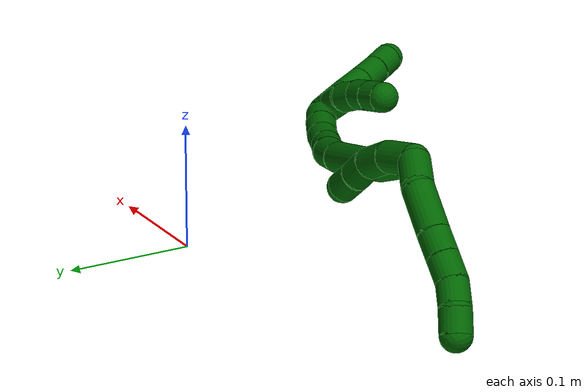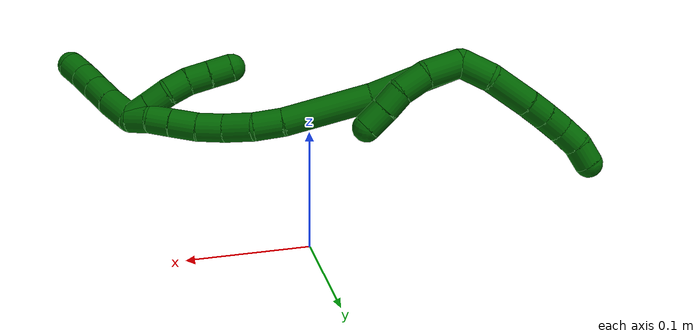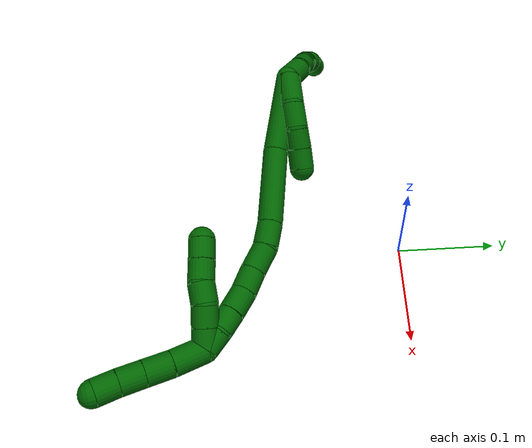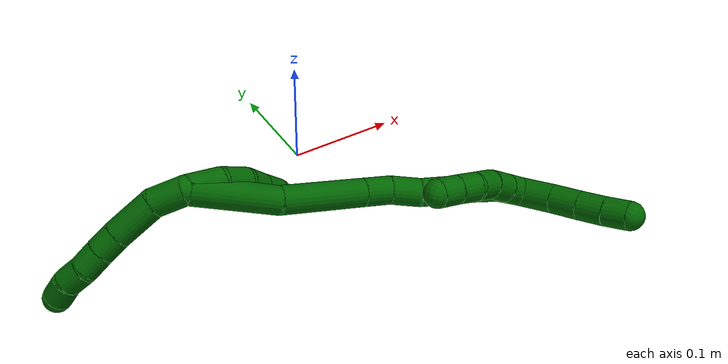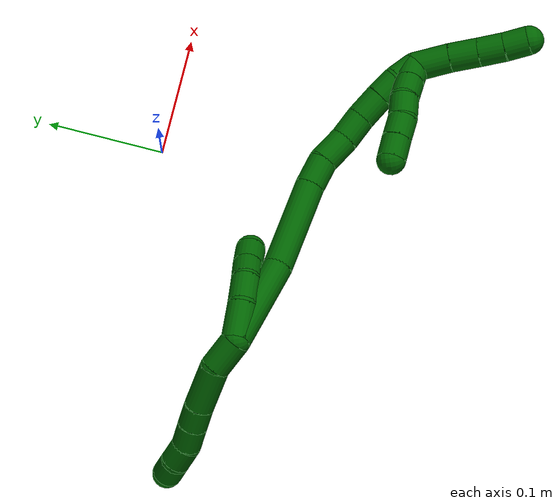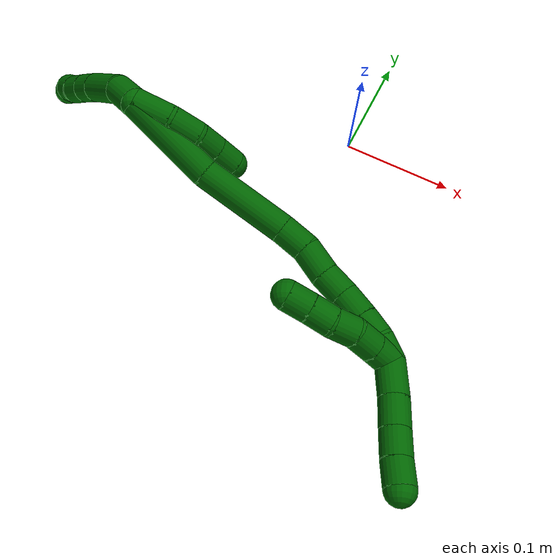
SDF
<sdf version="1.7">
 <world name="default">
  <model name="6">
   <static>0</static>
   <link name="6">
    <collision name="collision-cylinder-e_1_2_8">
     <pose>-0.009412 -0.004032 -0.010363 2.77052 -0.70242 -2.19477</pose>
     <geometry><cylinder><radius>0.0125</radius><length>0.029138</length></cylinder></geometry>
     <surface>
      <friction><ode><mu>1.16</mu><mu2>1.16</mu2><slip1>0</slip1><slip2>0</slip2></ode></friction>
      <contact><ode><kp>1e+06</kp><kd>1</kd><max_vel>0</max_vel><min_depth>0.001</min_depth></ode></contact>
     </surface>
    </collision>
    <visual name="visual-cylinder-e_1_2_8">
     <pose>-0.009412 -0.004032 -0.010363 2.77052 -0.70242 -2.19477</pose>
     <geometry><cylinder><radius>0.0125</radius><length>0.029138</length></cylinder></geometry>
     <material><ambient>0 0.392157 0.003922 1</ambient></material>
    </visual>
    <collision name="collision-cylinder-e_2_8_9">
     <pose>-0.032936 -0.018177 -0.03035 2.33143 -0.79081 -1.54384</pose>
     <geometry><cylinder><radius>0.0125</radius><length>0.039699</length></cylinder></geometry>
     <surface>
      <friction><ode><mu>1.16</mu><mu2>1.16</mu2><slip1>0</slip1><slip2>0</slip2></ode></friction>
      <contact><ode><kp>1e+06</kp><kd>1</kd><max_vel>0</max_vel><min_depth>0.001</min_depth></ode></contact>
     </surface>
    </collision>
    <visual name="visual-cylinder-e_2_8_9">
     <pose>-0.032936 -0.018177 -0.03035 2.33143 -0.79081 -1.54384</pose>
     <geometry><cylinder><radius>0.0125</radius><length>0.039699</length></cylinder></geometry>
     <material><ambient>0 0.392157 0.003922 1</ambient></material>
    </visual>
    <collision name="collision-cylinder-e_3_9_10">
     <pose>-0.054178 -0.033833 -0.044301 2.23357 -0.792226 -1.41707</pose>
     <geometry><cylinder><radius>0.0125</radius><length>0.020031</length></cylinder></geometry>
     <surface>
      <friction><ode><mu>1.16</mu><mu2>1.16</mu2><slip1>0</slip1><slip2>0</slip2></ode></friction>
      <contact><ode><kp>1e+06</kp><kd>1</kd><max_vel>0</max_vel><min_depth>0.001</min_depth></ode></contact>
     </surface>
    </collision>
    <visual name="visual-cylinder-e_3_9_10">
     <pose>-0.054178 -0.033833 -0.044301 2.23357 -0.792226 -1.41707</pose>
     <geometry><cylinder><radius>0.0125</radius><length>0.020031</length></cylinder></geometry>
     <material><ambient>0 0.392157 0.003922 1</ambient></material>
    </visual>
    <collision name="collision-cylinder-e_4_10_11">
     <pose>-0.068554 -0.045403 -0.052943 2.19223 -0.774199 -1.34132</pose>
     <geometry><cylinder><radius>0.0125</radius><length>0.020729</length></cylinder></geometry>
     <surface>
      <friction><ode><mu>1.16</mu><mu2>1.16</mu2><slip1>0</slip1><slip2>0</slip2></ode></friction>
      <contact><ode><kp>1e+06</kp><kd>1</kd><max_vel>0</max_vel><min_depth>0.001</min_depth></ode></contact>
     </surface>
    </collision>
    <visual name="visual-cylinder-e_4_10_11">
     <pose>-0.068554 -0.045403 -0.052943 2.19223 -0.774199 -1.34132</pose>
     <geometry><cylinder><radius>0.0125</radius><length>0.020729</length></cylinder></geometry>
     <material><ambient>0 0.392157 0.003922 1</ambient></material>
    </visual>
    <collision name="collision-cylinder-e_5_11_12">
     <pose>-0.08153 -0.057185 -0.063424 2.39048 -0.596541 -1.32458</pose>
     <geometry><cylinder><radius>0.0125</radius><length>0.020395</length></cylinder></geometry>
     <surface>
      <friction><ode><mu>1.16</mu><mu2>1.16</mu2><slip1>0</slip1><slip2>0</slip2></ode></friction>
      <contact><ode><kp>1e+06</kp><kd>1</kd><max_vel>0</max_vel><min_depth>0.001</min_depth></ode></contact>
     </surface>
    </collision>
    <visual name="visual-cylinder-e_5_11_12">
     <pose>-0.08153 -0.057185 -0.063424 2.39048 -0.596541 -1.32458</pose>
     <geometry><cylinder><radius>0.0125</radius><length>0.020395</length></cylinder></geometry>
     <material><ambient>0 0.392157 0.003922 1</ambient></material>
    </visual>
    <collision name="collision-cylinder-e_6_12_6">
     <pose>-0.091211 -0.070649 -0.074597 2.14703 -0.406227 -0.725318</pose>
     <geometry><cylinder><radius>0.0125</radius><length>0.020009</length></cylinder></geometry>
     <surface>
      <friction><ode><mu>1.16</mu><mu2>1.16</mu2><slip1>0</slip1><slip2>0</slip2></ode></friction>
      <contact><ode><kp>1e+06</kp><kd>1</kd><max_vel>0</max_vel><min_depth>0.001</min_depth></ode></contact>
     </surface>
    </collision>
    <visual name="visual-cylinder-e_6_12_6">
     <pose>-0.091211 -0.070649 -0.074597 2.14703 -0.406227 -0.725318</pose>
     <geometry><cylinder><radius>0.0125</radius><length>0.020009</length></cylinder></geometry>
     <material><ambient>0 0.392157 0.003922 1</ambient></material>
    </visual>
    <collision name="collision-cylinder-e_1_2_13">
     <pose>0.014981 -0.004576 0.003926 0.861785 1.18815 0.602154</pose>
     <geometry><cylinder><radius>0.0125</radius><length>0.032297</length></cylinder></geometry>
     <surface>
      <friction><ode><mu>1.16</mu><mu2>1.16</mu2><slip1>0</slip1><slip2>0</slip2></ode></friction>
      <contact><ode><kp>1e+06</kp><kd>1</kd><max_vel>0</max_vel><min_depth>0.001</min_depth></ode></contact>
     </surface>
    </collision>
    <visual name="visual-cylinder-e_1_2_13">
     <pose>0.014981 -0.004576 0.003926 0.861785 1.18815 0.602154</pose>
     <geometry><cylinder><radius>0.0125</radius><length>0.032297</length></cylinder></geometry>
     <material><ambient>0 0.392157 0.003922 1</ambient></material>
    </visual>
    <collision name="collision-cylinder-e_2_13_14">
     <pose>0.040778 -0.015988 0.009772 1.29682 0.989937 0.776473</pose>
     <geometry><cylinder><radius>0.0125</radius><length>0.025877</length></cylinder></geometry>
     <surface>
      <friction><ode><mu>1.16</mu><mu2>1.16</mu2><slip1>0</slip1><slip2>0</slip2></ode></friction>
      <contact><ode><kp>1e+06</kp><kd>1</kd><max_vel>0</max_vel><min_depth>0.001</min_depth></ode></contact>
     </surface>
    </collision>
    <visual name="visual-cylinder-e_2_13_14">
     <pose>0.040778 -0.015988 0.009772 1.29682 0.989937 0.776473</pose>
     <geometry><cylinder><radius>0.0125</radius><length>0.025877</length></cylinder></geometry>
     <material><ambient>0 0.392157 0.003922 1</ambient></material>
    </visual>
    <collision name="collision-cylinder-e_3_14_15">
     <pose>0.058517 -0.03041 0.012183 1.50634 0.738569 0.696179</pose>
     <geometry><cylinder><radius>0.0125</radius><length>0.020564</length></cylinder></geometry>
     <surface>
      <friction><ode><mu>1.16</mu><mu2>1.16</mu2><slip1>0</slip1><slip2>0</slip2></ode></friction>
      <contact><ode><kp>1e+06</kp><kd>1</kd><max_vel>0</max_vel><min_depth>0.001</min_depth></ode></contact>
     </surface>
    </collision>
    <visual name="visual-cylinder-e_3_14_15">
     <pose>0.058517 -0.03041 0.012183 1.50634 0.738569 0.696179</pose>
     <geometry><cylinder><radius>0.0125</radius><length>0.020564</length></cylinder></geometry>
     <material><ambient>0 0.392157 0.003922 1</ambient></material>
    </visual>
    <collision name="collision-cylinder-e_4_15_5">
     <pose>0.072849 -0.045535 0.013805 1.42176 0.771276 0.672566</pose>
     <geometry><cylinder><radius>0.0125</radius><length>0.021262</length></cylinder></geometry>
     <surface>
      <friction><ode><mu>1.16</mu><mu2>1.16</mu2><slip1>0</slip1><slip2>0</slip2></ode></friction>
      <contact><ode><kp>1e+06</kp><kd>1</kd><max_vel>0</max_vel><min_depth>0.001</min_depth></ode></contact>
     </surface>
    </collision>
    <visual name="visual-cylinder-e_4_15_5">
     <pose>0.072849 -0.045535 0.013805 1.42176 0.771276 0.672566</pose>
     <geometry><cylinder><radius>0.0125</radius><length>0.021262</length></cylinder></geometry>
     <material><ambient>0 0.392157 0.003922 1</ambient></material>
    </visual>
    <collision name="collision-cylinder-e_1_2_16">
     <pose>0.030345 -0.019308 0.018613 0.803713 0.847002 0.378559</pose>
     <geometry><cylinder><radius>0.0125</radius><length>0.080996</length></cylinder></geometry>
     <surface>
      <friction><ode><mu>1.16</mu><mu2>1.16</mu2><slip1>0</slip1><slip2>0</slip2></ode></friction>
      <contact><ode><kp>1e+06</kp><kd>1</kd><max_vel>0</max_vel><min_depth>0.001</min_depth></ode></contact>
     </surface>
    </collision>
    <visual name="visual-cylinder-e_1_2_16">
     <pose>0.030345 -0.019308 0.018613 0.803713 0.847002 0.378559</pose>
     <geometry><cylinder><radius>0.0125</radius><length>0.080996</length></cylinder></geometry>
     <material><ambient>0 0.392157 0.003922 1</ambient></material>
    </visual>
    <collision name="collision-cylinder-e_2_16_17">
     <pose>0.094418 -0.051661 0.053258 0.683058 1.02102 0.392996</pose>
     <geometry><cylinder><radius>0.0125</radius><length>0.079113</length></cylinder></geometry>
     <surface>
      <friction><ode><mu>1.16</mu><mu2>1.16</mu2><slip1>0</slip1><slip2>0</slip2></ode></friction>
      <contact><ode><kp>1e+06</kp><kd>1</kd><max_vel>0</max_vel><min_depth>0.001</min_depth></ode></contact>
     </surface>
    </collision>
    <visual name="visual-cylinder-e_2_16_17">
     <pose>0.094418 -0.051661 0.053258 0.683058 1.02102 0.392996</pose>
     <geometry><cylinder><radius>0.0125</radius><length>0.079113</length></cylinder></geometry>
     <material><ambient>0 0.392157 0.003922 1</ambient></material>
    </visual>
    <collision name="collision-cylinder-e_3_17_18">
     <pose>0.138563 -0.068012 0.075828 0.468102 0.95784 0.246341</pose>
     <geometry><cylinder><radius>0.0125</radius><length>0.025472</length></cylinder></geometry>
     <surface>
      <friction><ode><mu>1.16</mu><mu2>1.16</mu2><slip1>0</slip1><slip2>0</slip2></ode></friction>
      <contact><ode><kp>1e+06</kp><kd>1</kd><max_vel>0</max_vel><min_depth>0.001</min_depth></ode></contact>
     </surface>
    </collision>
    <visual name="visual-cylinder-e_3_17_18">
     <pose>0.138563 -0.068012 0.075828 0.468102 0.95784 0.246341</pose>
     <geometry><cylinder><radius>0.0125</radius><length>0.025472</length></cylinder></geometry>
     <material><ambient>0 0.392157 0.003922 1</ambient></material>
    </visual>
    <collision name="collision-cylinder-e_4_18_19">
     <pose>0.157504 -0.074909 0.091974 0.3577 0.69342 0.130449</pose>
     <geometry><cylinder><radius>0.0125</radius><length>0.026672</length></cylinder></geometry>
     <surface>
      <friction><ode><mu>1.16</mu><mu2>1.16</mu2><slip1>0</slip1><slip2>0</slip2></ode></friction>
      <contact><ode><kp>1e+06</kp><kd>1</kd><max_vel>0</max_vel><min_depth>0.001</min_depth></ode></contact>
     </surface>
    </collision>
    <visual name="visual-cylinder-e_4_18_19">
     <pose>0.157504 -0.074909 0.091974 0.3577 0.69342 0.130449</pose>
     <geometry><cylinder><radius>0.0125</radius><length>0.026672</length></cylinder></geometry>
     <material><ambient>0 0.392157 0.003922 1</ambient></material>
    </visual>
    <collision name="collision-cylinder-e_5_19_20">
     <pose>0.174611 -0.080178 0.109532 0.208038 0.812691 0.089781</pose>
     <geometry><cylinder><radius>0.0125</radius><length>0.023641</length></cylinder></geometry>
     <surface>
      <friction><ode><mu>1.16</mu><mu2>1.16</mu2><slip1>0</slip1><slip2>0</slip2></ode></friction>
      <contact><ode><kp>1e+06</kp><kd>1</kd><max_vel>0</max_vel><min_depth>0.001</min_depth></ode></contact>
     </surface>
    </collision>
    <visual name="visual-cylinder-e_5_19_20">
     <pose>0.174611 -0.080178 0.109532 0.208038 0.812691 0.089781</pose>
     <geometry><cylinder><radius>0.0125</radius><length>0.023641</length></cylinder></geometry>
     <material><ambient>0 0.392157 0.003922 1</ambient></material>
    </visual>
    <collision name="collision-cylinder-e_6_20_21">
     <pose>0.19107 -0.08251 0.12645 0.07271 0.719448 0.027356</pose>
     <geometry><cylinder><radius>0.0125</radius><length>0.023902</length></cylinder></geometry>
     <surface>
      <friction><ode><mu>1.16</mu><mu2>1.16</mu2><slip1>0</slip1><slip2>0</slip2></ode></friction>
      <contact><ode><kp>1e+06</kp><kd>1</kd><max_vel>0</max_vel><min_depth>0.001</min_depth></ode></contact>
     </surface>
    </collision>
    <visual name="visual-cylinder-e_6_20_21">
     <pose>0.19107 -0.08251 0.12645 0.07271 0.719448 0.027356</pose>
     <geometry><cylinder><radius>0.0125</radius><length>0.023902</length></cylinder></geometry>
     <material><ambient>0 0.392157 0.003922 1</ambient></material>
    </visual>
    <collision name="collision-cylinder-e_7_21_22">
     <pose>0.205208 -0.083875 0.1433 0.090059 0.669322 0.031336</pose>
     <geometry><cylinder><radius>0.0125</radius><length>0.020188</length></cylinder></geometry>
     <surface>
      <friction><ode><mu>1.16</mu><mu2>1.16</mu2><slip1>0</slip1><slip2>0</slip2></ode></friction>
      <contact><ode><kp>1e+06</kp><kd>1</kd><max_vel>0</max_vel><min_depth>0.001</min_depth></ode></contact>
     </surface>
    </collision>
    <visual name="visual-cylinder-e_7_21_22">
     <pose>0.205208 -0.083875 0.1433 0.090059 0.669322 0.031336</pose>
     <geometry><cylinder><radius>0.0125</radius><length>0.020188</length></cylinder></geometry>
     <material><ambient>0 0.392157 0.003922 1</ambient></material>
    </visual>
    <collision name="collision-cylinder-e_8_22_1">
     <pose>0.216512 -0.08723 0.159416 0.310708 0.527817 0.084588</pose>
     <geometry><cylinder><radius>0.0125</radius><length>0.020015</length></cylinder></geometry>
     <surface>
      <friction><ode><mu>1.16</mu><mu2>1.16</mu2><slip1>0</slip1><slip2>0</slip2></ode></friction>
      <contact><ode><kp>1e+06</kp><kd>1</kd><max_vel>0</max_vel><min_depth>0.001</min_depth></ode></contact>
     </surface>
    </collision>
    <visual name="visual-cylinder-e_8_22_1">
     <pose>0.216512 -0.08723 0.159416 0.310708 0.527817 0.084588</pose>
     <geometry><cylinder><radius>0.0125</radius><length>0.020015</length></cylinder></geometry>
     <material><ambient>0 0.392157 0.003922 1</ambient></material>
    </visual>
    <collision name="collision-cylinder-e_1_1_23">
     <pose>0.214126 -0.083717 0.165011 -1.97538 -0.836972 1.18649</pose>
     <geometry><cylinder><radius>0.0125</radius><length>0.02</length></cylinder></geometry>
     <surface>
      <friction><ode><mu>1.16</mu><mu2>1.16</mu2><slip1>0</slip1><slip2>0</slip2></ode></friction>
      <contact><ode><kp>1e+06</kp><kd>1</kd><max_vel>0</max_vel><min_depth>0.001</min_depth></ode></contact>
     </surface>
    </collision>
    <visual name="visual-cylinder-e_1_1_23">
     <pose>0.214126 -0.083717 0.165011 -1.97538 -0.836972 1.18649</pose>
     <geometry><cylinder><radius>0.0125</radius><length>0.02</length></cylinder></geometry>
     <material><ambient>0 0.392157 0.003922 1</ambient></material>
    </visual>
    <collision name="collision-cylinder-e_2_23_24">
     <pose>0.199244 -0.071384 0.159873 -1.95575 -0.841464 1.17241</pose>
     <geometry><cylinder><radius>0.0125</radius><length>0.02</length></cylinder></geometry>
     <surface>
      <friction><ode><mu>1.16</mu><mu2>1.16</mu2><slip1>0</slip1><slip2>0</slip2></ode></friction>
      <contact><ode><kp>1e+06</kp><kd>1</kd><max_vel>0</max_vel><min_depth>0.001</min_depth></ode></contact>
     </surface>
    </collision>
    <visual name="visual-cylinder-e_2_23_24">
     <pose>0.199244 -0.071384 0.159873 -1.95575 -0.841464 1.17241</pose>
     <geometry><cylinder><radius>0.0125</radius><length>0.02</length></cylinder></geometry>
     <material><ambient>0 0.392157 0.003922 1</ambient></material>
    </visual>
    <collision name="collision-cylinder-e_3_24_25">
     <pose>0.182862 -0.060912 0.156001 -1.87935 -1.10295 1.39929</pose>
     <geometry><cylinder><radius>0.0125</radius><length>0.02</length></cylinder></geometry>
     <surface>
      <friction><ode><mu>1.16</mu><mu2>1.16</mu2><slip1>0</slip1><slip2>0</slip2></ode></friction>
      <contact><ode><kp>1e+06</kp><kd>1</kd><max_vel>0</max_vel><min_depth>0.001</min_depth></ode></contact>
     </surface>
    </collision>
    <visual name="visual-cylinder-e_3_24_25">
     <pose>0.182862 -0.060912 0.156001 -1.87935 -1.10295 1.39929</pose>
     <geometry><cylinder><radius>0.0125</radius><length>0.02</length></cylinder></geometry>
     <material><ambient>0 0.392157 0.003922 1</ambient></material>
    </visual>
    <collision name="collision-cylinder-e_4_25_26">
     <pose>0.165088 -0.053393 0.151266 -2.37803 -1.08614 1.96771</pose>
     <geometry><cylinder><radius>0.0125</radius><length>0.02</length></cylinder></geometry>
     <surface>
      <friction><ode><mu>1.16</mu><mu2>1.16</mu2><slip1>0</slip1><slip2>0</slip2></ode></friction>
      <contact><ode><kp>1e+06</kp><kd>1</kd><max_vel>0</max_vel><min_depth>0.001</min_depth></ode></contact>
     </surface>
    </collision>
    <visual name="visual-cylinder-e_4_25_26">
     <pose>0.165088 -0.053393 0.151266 -2.37803 -1.08614 1.96771</pose>
     <geometry><cylinder><radius>0.0125</radius><length>0.02</length></cylinder></geometry>
     <material><ambient>0 0.392157 0.003922 1</ambient></material>
    </visual>
    <collision name="collision-cylinder-e_5_26_4">
     <pose>0.147236 -0.047128 0.144791 -2.36696 -1.12065 1.9886</pose>
     <geometry><cylinder><radius>0.0125</radius><length>0.02</length></cylinder></geometry>
     <surface>
      <friction><ode><mu>1.16</mu><mu2>1.16</mu2><slip1>0</slip1><slip2>0</slip2></ode></friction>
      <contact><ode><kp>1e+06</kp><kd>1</kd><max_vel>0</max_vel><min_depth>0.001</min_depth></ode></contact>
     </surface>
    </collision>
    <visual name="visual-cylinder-e_5_26_4">
     <pose>0.147236 -0.047128 0.144791 -2.36696 -1.12065 1.9886</pose>
     <geometry><cylinder><radius>0.0125</radius><length>0.02</length></cylinder></geometry>
     <material><ambient>0 0.392157 0.003922 1</ambient></material>
    </visual>
    <collision name="collision-cylinder-e_1_1_27">
     <pose>0.223257 -0.089003 0.183201 -0.055935 0.108999 -0.003052</pose>
     <geometry><cylinder><radius>0.0125</radius><length>0.031341</length></cylinder></geometry>
     <surface>
      <friction><ode><mu>1.16</mu><mu2>1.16</mu2><slip1>0</slip1><slip2>0</slip2></ode></friction>
      <contact><ode><kp>1e+06</kp><kd>1</kd><max_vel>0</max_vel><min_depth>0.001</min_depth></ode></contact>
     </surface>
    </collision>
    <visual name="visual-cylinder-e_1_1_27">
     <pose>0.223257 -0.089003 0.183201 -0.055935 0.108999 -0.003052</pose>
     <geometry><cylinder><radius>0.0125</radius><length>0.031341</length></cylinder></geometry>
     <material><ambient>0 0.392157 0.003922 1</ambient></material>
    </visual>
    <collision name="collision-cylinder-e_2_27_28">
     <pose>0.225464 -0.087112 0.211246 -0.081468 0.040064 -0.001633</pose>
     <geometry><cylinder><radius>0.0125</radius><length>0.025087</length></cylinder></geometry>
     <surface>
      <friction><ode><mu>1.16</mu><mu2>1.16</mu2><slip1>0</slip1><slip2>0</slip2></ode></friction>
      <contact><ode><kp>1e+06</kp><kd>1</kd><max_vel>0</max_vel><min_depth>0.001</min_depth></ode></contact>
     </surface>
    </collision>
    <visual name="visual-cylinder-e_2_27_28">
     <pose>0.225464 -0.087112 0.211246 -0.081468 0.040064 -0.001633</pose>
     <geometry><cylinder><radius>0.0125</radius><length>0.025087</length></cylinder></geometry>
     <material><ambient>0 0.392157 0.003922 1</ambient></material>
    </visual>
    <collision name="collision-cylinder-e_3_28_29">
     <pose>0.226564 -0.08501 0.23498 -0.095906 0.052894 -0.002539</pose>
     <geometry><cylinder><radius>0.0125</radius><length>0.02262</length></cylinder></geometry>
     <surface>
      <friction><ode><mu>1.16</mu><mu2>1.16</mu2><slip1>0</slip1><slip2>0</slip2></ode></friction>
      <contact><ode><kp>1e+06</kp><kd>1</kd><max_vel>0</max_vel><min_depth>0.001</min_depth></ode></contact>
     </surface>
    </collision>
    <visual name="visual-cylinder-e_3_28_29">
     <pose>0.226564 -0.08501 0.23498 -0.095906 0.052894 -0.002539</pose>
     <geometry><cylinder><radius>0.0125</radius><length>0.02262</length></cylinder></geometry>
     <material><ambient>0 0.392157 0.003922 1</ambient></material>
    </visual>
    <collision name="collision-cylinder-e_4_29_3">
     <pose>0.228385 -0.082947 0.25658 -0.094525 0.116994 -0.00554</pose>
     <geometry><cylinder><radius>0.0125</radius><length>0.020951</length></cylinder></geometry>
     <surface>
      <friction><ode><mu>1.16</mu><mu2>1.16</mu2><slip1>0</slip1><slip2>0</slip2></ode></friction>
      <contact><ode><kp>1e+06</kp><kd>1</kd><max_vel>0</max_vel><min_depth>0.001</min_depth></ode></contact>
     </surface>
    </collision>
    <visual name="visual-cylinder-e_4_29_3">
     <pose>0.228385 -0.082947 0.25658 -0.094525 0.116994 -0.00554</pose>
     <geometry><cylinder><radius>0.0125</radius><length>0.020951</length></cylinder></geometry>
     <material><ambient>0 0.392157 0.003922 1</ambient></material>
    </visual>
    <collision name="collision-sphere-3">
     <pose>0.229608 -0.081965 0.266938 0 -0 0</pose>
     <geometry><sphere><radius>0.0125</radius></sphere></geometry>
     <surface>
      <friction><ode><mu>1.16</mu><mu2>1.16</mu2><slip1>0</slip1><slip2>0</slip2></ode></friction>
      <contact><ode><kp>1e+06</kp><kd>1</kd><max_vel>0</max_vel><min_depth>0.001</min_depth></ode></contact>
     </surface>
    </collision>
    <visual name="visual-sphere-3">
     <pose>0.229608 -0.081965 0.266938 0 -0 0</pose>
     <geometry><sphere><radius>0.0125</radius></sphere></geometry>
     <material><ambient>0 0.392157 0.003922 1</ambient></material>
    </visual>
    <collision name="collision-sphere-29">
     <pose>0.227162 -0.083929 0.246223 0 -0 0</pose>
     <geometry><sphere><radius>0.0125</radius></sphere></geometry>
     <surface>
      <friction><ode><mu>1.16</mu><mu2>1.16</mu2><slip1>0</slip1><slip2>0</slip2></ode></friction>
      <contact><ode><kp>1e+06</kp><kd>1</kd><max_vel>0</max_vel><min_depth>0.001</min_depth></ode></contact>
     </surface>
    </collision>
    <visual name="visual-sphere-29">
     <pose>0.227162 -0.083929 0.246223 0 -0 0</pose>
     <geometry><sphere><radius>0.0125</radius></sphere></geometry>
     <material><ambient>0 0.392157 0.003922 1</ambient></material>
    </visual>
    <collision name="collision-sphere-28">
     <pose>0.225966 -0.086092 0.223738 0 -0 0</pose>
     <geometry><sphere><radius>0.0125</radius></sphere></geometry>
     <surface>
      <friction><ode><mu>1.16</mu><mu2>1.16</mu2><slip1>0</slip1><slip2>0</slip2></ode></friction>
      <contact><ode><kp>1e+06</kp><kd>1</kd><max_vel>0</max_vel><min_depth>0.001</min_depth></ode></contact>
     </surface>
    </collision>
    <visual name="visual-sphere-28">
     <pose>0.225966 -0.086092 0.223738 0 -0 0</pose>
     <geometry><sphere><radius>0.0125</radius></sphere></geometry>
     <material><ambient>0 0.392157 0.003922 1</ambient></material>
    </visual>
    <collision name="collision-sphere-27">
     <pose>0.224962 -0.088132 0.198754 0 -0 0</pose>
     <geometry><sphere><radius>0.0125</radius></sphere></geometry>
     <surface>
      <friction><ode><mu>1.16</mu><mu2>1.16</mu2><slip1>0</slip1><slip2>0</slip2></ode></friction>
      <contact><ode><kp>1e+06</kp><kd>1</kd><max_vel>0</max_vel><min_depth>0.001</min_depth></ode></contact>
     </surface>
    </collision>
    <visual name="visual-sphere-27">
     <pose>0.224962 -0.088132 0.198754 0 -0 0</pose>
     <geometry><sphere><radius>0.0125</radius></sphere></geometry>
     <material><ambient>0 0.392157 0.003922 1</ambient></material>
    </visual>
    <collision name="collision-sphere-4">
     <pose>0.138232 -0.044085 0.141681 0 -0 0</pose>
     <geometry><sphere><radius>0.0125</radius></sphere></geometry>
     <surface>
      <friction><ode><mu>1.16</mu><mu2>1.16</mu2><slip1>0</slip1><slip2>0</slip2></ode></friction>
      <contact><ode><kp>1e+06</kp><kd>1</kd><max_vel>0</max_vel><min_depth>0.001</min_depth></ode></contact>
     </surface>
    </collision>
    <visual name="visual-sphere-4">
     <pose>0.138232 -0.044085 0.141681 0 -0 0</pose>
     <geometry><sphere><radius>0.0125</radius></sphere></geometry>
     <material><ambient>0 0.392157 0.003922 1</ambient></material>
    </visual>
    <collision name="collision-sphere-26">
     <pose>0.15624 -0.050171 0.1479 0 -0 0</pose>
     <geometry><sphere><radius>0.0125</radius></sphere></geometry>
     <surface>
      <friction><ode><mu>1.16</mu><mu2>1.16</mu2><slip1>0</slip1><slip2>0</slip2></ode></friction>
      <contact><ode><kp>1e+06</kp><kd>1</kd><max_vel>0</max_vel><min_depth>0.001</min_depth></ode></contact>
     </surface>
    </collision>
    <visual name="visual-sphere-26">
     <pose>0.15624 -0.050171 0.1479 0 -0 0</pose>
     <geometry><sphere><radius>0.0125</radius></sphere></geometry>
     <material><ambient>0 0.392157 0.003922 1</ambient></material>
    </visual>
    <collision name="collision-sphere-25">
     <pose>0.173937 -0.056615 0.154631 0 -0 0</pose>
     <geometry><sphere><radius>0.0125</radius></sphere></geometry>
     <surface>
      <friction><ode><mu>1.16</mu><mu2>1.16</mu2><slip1>0</slip1><slip2>0</slip2></ode></friction>
      <contact><ode><kp>1e+06</kp><kd>1</kd><max_vel>0</max_vel><min_depth>0.001</min_depth></ode></contact>
     </surface>
    </collision>
    <visual name="visual-sphere-25">
     <pose>0.173937 -0.056615 0.154631 0 -0 0</pose>
     <geometry><sphere><radius>0.0125</radius></sphere></geometry>
     <material><ambient>0 0.392157 0.003922 1</ambient></material>
    </visual>
    <collision name="collision-sphere-24">
     <pose>0.191787 -0.065208 0.15737 0 -0 0</pose>
     <geometry><sphere><radius>0.0125</radius></sphere></geometry>
     <surface>
      <friction><ode><mu>1.16</mu><mu2>1.16</mu2><slip1>0</slip1><slip2>0</slip2></ode></friction>
      <contact><ode><kp>1e+06</kp><kd>1</kd><max_vel>0</max_vel><min_depth>0.001</min_depth></ode></contact>
     </surface>
    </collision>
    <visual name="visual-sphere-24">
     <pose>0.191787 -0.065208 0.15737 0 -0 0</pose>
     <geometry><sphere><radius>0.0125</radius></sphere></geometry>
     <material><ambient>0 0.392157 0.003922 1</ambient></material>
    </visual>
    <collision name="collision-sphere-23">
     <pose>0.2067 -0.077561 0.162375 0 -0 0</pose>
     <geometry><sphere><radius>0.0125</radius></sphere></geometry>
     <surface>
      <friction><ode><mu>1.16</mu><mu2>1.16</mu2><slip1>0</slip1><slip2>0</slip2></ode></friction>
      <contact><ode><kp>1e+06</kp><kd>1</kd><max_vel>0</max_vel><min_depth>0.001</min_depth></ode></contact>
     </surface>
    </collision>
    <visual name="visual-sphere-23">
     <pose>0.2067 -0.077561 0.162375 0 -0 0</pose>
     <geometry><sphere><radius>0.0125</radius></sphere></geometry>
     <material><ambient>0 0.392157 0.003922 1</ambient></material>
    </visual>
    <collision name="collision-sphere-1">
     <pose>0.221552 -0.089873 0.167648 0 -0 0</pose>
     <geometry><sphere><radius>0.0125</radius></sphere></geometry>
     <surface>
      <friction><ode><mu>1.16</mu><mu2>1.16</mu2><slip1>0</slip1><slip2>0</slip2></ode></friction>
      <contact><ode><kp>1e+06</kp><kd>1</kd><max_vel>0</max_vel><min_depth>0.001</min_depth></ode></contact>
     </surface>
    </collision>
    <visual name="visual-sphere-1">
     <pose>0.221552 -0.089873 0.167648 0 -0 0</pose>
     <geometry><sphere><radius>0.0125</radius></sphere></geometry>
     <material><ambient>0 0.392157 0.003922 1</ambient></material>
    </visual>
    <collision name="collision-sphere-22">
     <pose>0.211471 -0.084587 0.151184 0 -0 0</pose>
     <geometry><sphere><radius>0.0125</radius></sphere></geometry>
     <surface>
      <friction><ode><mu>1.16</mu><mu2>1.16</mu2><slip1>0</slip1><slip2>0</slip2></ode></friction>
      <contact><ode><kp>1e+06</kp><kd>1</kd><max_vel>0</max_vel><min_depth>0.001</min_depth></ode></contact>
     </surface>
    </collision>
    <visual name="visual-sphere-22">
     <pose>0.211471 -0.084587 0.151184 0 -0 0</pose>
     <geometry><sphere><radius>0.0125</radius></sphere></geometry>
     <material><ambient>0 0.392157 0.003922 1</ambient></material>
    </visual>
    <collision name="collision-sphere-21">
     <pose>0.198945 -0.083163 0.135416 0 -0 0</pose>
     <geometry><sphere><radius>0.0125</radius></sphere></geometry>
     <surface>
      <friction><ode><mu>1.16</mu><mu2>1.16</mu2><slip1>0</slip1><slip2>0</slip2></ode></friction>
      <contact><ode><kp>1e+06</kp><kd>1</kd><max_vel>0</max_vel><min_depth>0.001</min_depth></ode></contact>
     </surface>
    </collision>
    <visual name="visual-sphere-21">
     <pose>0.198945 -0.083163 0.135416 0 -0 0</pose>
     <geometry><sphere><radius>0.0125</radius></sphere></geometry>
     <material><ambient>0 0.392157 0.003922 1</ambient></material>
    </visual>
    <collision name="collision-sphere-12">
     <pose>-0.087258 -0.062942 -0.06959 0 -0 0</pose>
     <geometry><sphere><radius>0.0125</radius></sphere></geometry>
     <surface>
      <friction><ode><mu>1.16</mu><mu2>1.16</mu2><slip1>0</slip1><slip2>0</slip2></ode></friction>
      <contact><ode><kp>1e+06</kp><kd>1</kd><max_vel>0</max_vel><min_depth>0.001</min_depth></ode></contact>
     </surface>
    </collision>
    <visual name="visual-sphere-12">
     <pose>-0.087258 -0.062942 -0.06959 0 -0 0</pose>
     <geometry><sphere><radius>0.0125</radius></sphere></geometry>
     <material><ambient>0 0.392157 0.003922 1</ambient></material>
    </visual>
    <collision name="collision-sphere-11">
     <pose>-0.075801 -0.051428 -0.057258 0 -0 0</pose>
     <geometry><sphere><radius>0.0125</radius></sphere></geometry>
     <surface>
      <friction><ode><mu>1.16</mu><mu2>1.16</mu2><slip1>0</slip1><slip2>0</slip2></ode></friction>
      <contact><ode><kp>1e+06</kp><kd>1</kd><max_vel>0</max_vel><min_depth>0.001</min_depth></ode></contact>
     </surface>
    </collision>
    <visual name="visual-sphere-11">
     <pose>-0.075801 -0.051428 -0.057258 0 -0 0</pose>
     <geometry><sphere><radius>0.0125</radius></sphere></geometry>
     <material><ambient>0 0.392157 0.003922 1</ambient></material>
    </visual>
    <collision name="collision-sphere-10">
     <pose>-0.061308 -0.039378 -0.048629 0 -0 0</pose>
     <geometry><sphere><radius>0.0125</radius></sphere></geometry>
     <surface>
      <friction><ode><mu>1.16</mu><mu2>1.16</mu2><slip1>0</slip1><slip2>0</slip2></ode></friction>
      <contact><ode><kp>1e+06</kp><kd>1</kd><max_vel>0</max_vel><min_depth>0.001</min_depth></ode></contact>
     </surface>
    </collision>
    <visual name="visual-sphere-10">
     <pose>-0.061308 -0.039378 -0.048629 0 -0 0</pose>
     <geometry><sphere><radius>0.0125</radius></sphere></geometry>
     <material><ambient>0 0.392157 0.003922 1</ambient></material>
    </visual>
    <collision name="collision-sphere-9">
     <pose>-0.047048 -0.028289 -0.039973 0 -0 0</pose>
     <geometry><sphere><radius>0.0125</radius></sphere></geometry>
     <surface>
      <friction><ode><mu>1.16</mu><mu2>1.16</mu2><slip1>0</slip1><slip2>0</slip2></ode></friction>
      <contact><ode><kp>1e+06</kp><kd>1</kd><max_vel>0</max_vel><min_depth>0.001</min_depth></ode></contact>
     </surface>
    </collision>
    <visual name="visual-sphere-9">
     <pose>-0.047048 -0.028289 -0.039973 0 -0 0</pose>
     <geometry><sphere><radius>0.0125</radius></sphere></geometry>
     <material><ambient>0 0.392157 0.003922 1</ambient></material>
    </visual>
    <collision name="collision-sphere-2">
     <geometry><sphere><radius>0.0125</radius></sphere></geometry>
     <surface>
      <friction><ode><mu>1.16</mu><mu2>1.16</mu2><slip1>0</slip1><slip2>0</slip2></ode></friction>
      <contact><ode><kp>1e+06</kp><kd>1</kd><max_vel>0</max_vel><min_depth>0.001</min_depth></ode></contact>
     </surface>
    </collision>
    <visual name="visual-sphere-2">
     <geometry><sphere><radius>0.0125</radius></sphere></geometry>
     <material><ambient>0 0.392157 0.003922 1</ambient></material>
    </visual>
    <collision name="collision-sphere-19">
     <pose>0.166028 -0.0785 0.101581 0 -0 0</pose>
     <geometry><sphere><radius>0.0125</radius></sphere></geometry>
     <surface>
      <friction><ode><mu>1.16</mu><mu2>1.16</mu2><slip1>0</slip1><slip2>0</slip2></ode></friction>
      <contact><ode><kp>1e+06</kp><kd>1</kd><max_vel>0</max_vel><min_depth>0.001</min_depth></ode></contact>
     </surface>
    </collision>
    <visual name="visual-sphere-19">
     <pose>0.166028 -0.0785 0.101581 0 -0 0</pose>
     <geometry><sphere><radius>0.0125</radius></sphere></geometry>
     <material><ambient>0 0.392157 0.003922 1</ambient></material>
    </visual>
    <collision name="collision-sphere-8">
     <pose>-0.018825 -0.008065 -0.020726 0 -0 0</pose>
     <geometry><sphere><radius>0.0125</radius></sphere></geometry>
     <surface>
      <friction><ode><mu>1.16</mu><mu2>1.16</mu2><slip1>0</slip1><slip2>0</slip2></ode></friction>
      <contact><ode><kp>1e+06</kp><kd>1</kd><max_vel>0</max_vel><min_depth>0.001</min_depth></ode></contact>
     </surface>
    </collision>
    <visual name="visual-sphere-8">
     <pose>-0.018825 -0.008065 -0.020726 0 -0 0</pose>
     <geometry><sphere><radius>0.0125</radius></sphere></geometry>
     <material><ambient>0 0.392157 0.003922 1</ambient></material>
    </visual>
    <collision name="collision-sphere-6">
     <pose>-0.095165 -0.078355 -0.079605 0 -0 0</pose>
     <geometry><sphere><radius>0.0125</radius></sphere></geometry>
     <surface>
      <friction><ode><mu>1.16</mu><mu2>1.16</mu2><slip1>0</slip1><slip2>0</slip2></ode></friction>
      <contact><ode><kp>1e+06</kp><kd>1</kd><max_vel>0</max_vel><min_depth>0.001</min_depth></ode></contact>
     </surface>
    </collision>
    <visual name="visual-sphere-6">
     <pose>-0.095165 -0.078355 -0.079605 0 -0 0</pose>
     <geometry><sphere><radius>0.0125</radius></sphere></geometry>
     <material><ambient>0 0.392157 0.003922 1</ambient></material>
    </visual>
    <collision name="collision-sphere-13">
     <pose>0.029961 -0.009153 0.007851 0 -0 0</pose>
     <geometry><sphere><radius>0.0125</radius></sphere></geometry>
     <surface>
      <friction><ode><mu>1.16</mu><mu2>1.16</mu2><slip1>0</slip1><slip2>0</slip2></ode></friction>
      <contact><ode><kp>1e+06</kp><kd>1</kd><max_vel>0</max_vel><min_depth>0.001</min_depth></ode></contact>
     </surface>
    </collision>
    <visual name="visual-sphere-13">
     <pose>0.029961 -0.009153 0.007851 0 -0 0</pose>
     <geometry><sphere><radius>0.0125</radius></sphere></geometry>
     <material><ambient>0 0.392157 0.003922 1</ambient></material>
    </visual>
    <collision name="collision-sphere-14">
     <pose>0.051594 -0.022823 0.011693 0 -0 0</pose>
     <geometry><sphere><radius>0.0125</radius></sphere></geometry>
     <surface>
      <friction><ode><mu>1.16</mu><mu2>1.16</mu2><slip1>0</slip1><slip2>0</slip2></ode></friction>
      <contact><ode><kp>1e+06</kp><kd>1</kd><max_vel>0</max_vel><min_depth>0.001</min_depth></ode></contact>
     </surface>
    </collision>
    <visual name="visual-sphere-14">
     <pose>0.051594 -0.022823 0.011693 0 -0 0</pose>
     <geometry><sphere><radius>0.0125</radius></sphere></geometry>
     <material><ambient>0 0.392157 0.003922 1</ambient></material>
    </visual>
    <collision name="collision-sphere-15">
     <pose>0.065439 -0.037997 0.012673 0 -0 0</pose>
     <geometry><sphere><radius>0.0125</radius></sphere></geometry>
     <surface>
      <friction><ode><mu>1.16</mu><mu2>1.16</mu2><slip1>0</slip1><slip2>0</slip2></ode></friction>
      <contact><ode><kp>1e+06</kp><kd>1</kd><max_vel>0</max_vel><min_depth>0.001</min_depth></ode></contact>
     </surface>
    </collision>
    <visual name="visual-sphere-15">
     <pose>0.065439 -0.037997 0.012673 0 -0 0</pose>
     <geometry><sphere><radius>0.0125</radius></sphere></geometry>
     <material><ambient>0 0.392157 0.003922 1</ambient></material>
    </visual>
    <collision name="collision-sphere-5">
     <pose>0.080259 -0.053073 0.014936 0 -0 0</pose>
     <geometry><sphere><radius>0.0125</radius></sphere></geometry>
     <surface>
      <friction><ode><mu>1.16</mu><mu2>1.16</mu2><slip1>0</slip1><slip2>0</slip2></ode></friction>
      <contact><ode><kp>1e+06</kp><kd>1</kd><max_vel>0</max_vel><min_depth>0.001</min_depth></ode></contact>
     </surface>
    </collision>
    <visual name="visual-sphere-5">
     <pose>0.080259 -0.053073 0.014936 0 -0 0</pose>
     <geometry><sphere><radius>0.0125</radius></sphere></geometry>
     <material><ambient>0 0.392157 0.003922 1</ambient></material>
    </visual>
    <collision name="collision-sphere-16">
     <pose>0.06069 -0.038616 0.037227 0 -0 0</pose>
     <geometry><sphere><radius>0.0125</radius></sphere></geometry>
     <surface>
      <friction><ode><mu>1.16</mu><mu2>1.16</mu2><slip1>0</slip1><slip2>0</slip2></ode></friction>
      <contact><ode><kp>1e+06</kp><kd>1</kd><max_vel>0</max_vel><min_depth>0.001</min_depth></ode></contact>
     </surface>
    </collision>
    <visual name="visual-sphere-16">
     <pose>0.06069 -0.038616 0.037227 0 -0 0</pose>
     <geometry><sphere><radius>0.0125</radius></sphere></geometry>
     <material><ambient>0 0.392157 0.003922 1</ambient></material>
    </visual>
    <collision name="collision-sphere-17">
     <pose>0.128145 -0.064706 0.069289 0 -0 0</pose>
     <geometry><sphere><radius>0.0125</radius></sphere></geometry>
     <surface>
      <friction><ode><mu>1.16</mu><mu2>1.16</mu2><slip1>0</slip1><slip2>0</slip2></ode></friction>
      <contact><ode><kp>1e+06</kp><kd>1</kd><max_vel>0</max_vel><min_depth>0.001</min_depth></ode></contact>
     </surface>
    </collision>
    <visual name="visual-sphere-17">
     <pose>0.128145 -0.064706 0.069289 0 -0 0</pose>
     <geometry><sphere><radius>0.0125</radius></sphere></geometry>
     <material><ambient>0 0.392157 0.003922 1</ambient></material>
    </visual>
    <collision name="collision-sphere-18">
     <pose>0.14898 -0.071318 0.082367 0 -0 0</pose>
     <geometry><sphere><radius>0.0125</radius></sphere></geometry>
     <surface>
      <friction><ode><mu>1.16</mu><mu2>1.16</mu2><slip1>0</slip1><slip2>0</slip2></ode></friction>
      <contact><ode><kp>1e+06</kp><kd>1</kd><max_vel>0</max_vel><min_depth>0.001</min_depth></ode></contact>
     </surface>
    </collision>
    <visual name="visual-sphere-18">
     <pose>0.14898 -0.071318 0.082367 0 -0 0</pose>
     <geometry><sphere><radius>0.0125</radius></sphere></geometry>
     <material><ambient>0 0.392157 0.003922 1</ambient></material>
    </visual>
    <collision name="collision-sphere-20">
     <pose>0.183194 -0.081857 0.117484 0 -0 0</pose>
     <geometry><sphere><radius>0.0125</radius></sphere></geometry>
     <surface>
      <friction><ode><mu>1.16</mu><mu2>1.16</mu2><slip1>0</slip1><slip2>0</slip2></ode></friction>
      <contact><ode><kp>1e+06</kp><kd>1</kd><max_vel>0</max_vel><min_depth>0.001</min_depth></ode></contact>
     </surface>
    </collision>
    <visual name="visual-sphere-20">
     <pose>0.183194 -0.081857 0.117484 0 -0 0</pose>
     <geometry><sphere><radius>0.0125</radius></sphere></geometry>
     <material><ambient>0 0.392157 0.003922 1</ambient></material>
    </visual>
    <inertial>
     <pose>0.096372 -0.051797 0.071625 0 -0 0</pose>
     <mass>0.75</mass>
     <inertia>
      <ixx>0.000101</ixx>
      <ixy>0</ixy>
      <ixz>0</ixz>
      <iyy>0.000126</iyy>
      <iyz>0</iyz>
      <izz>-1.2e-05</izz>
     </inertia>
    </inertial>
   </link>
   <pose>-0.156955 -0.106586 0.103059 1.44908 -0.044271 0.365579</pose>
  </model>
 </world>
</sdf>
